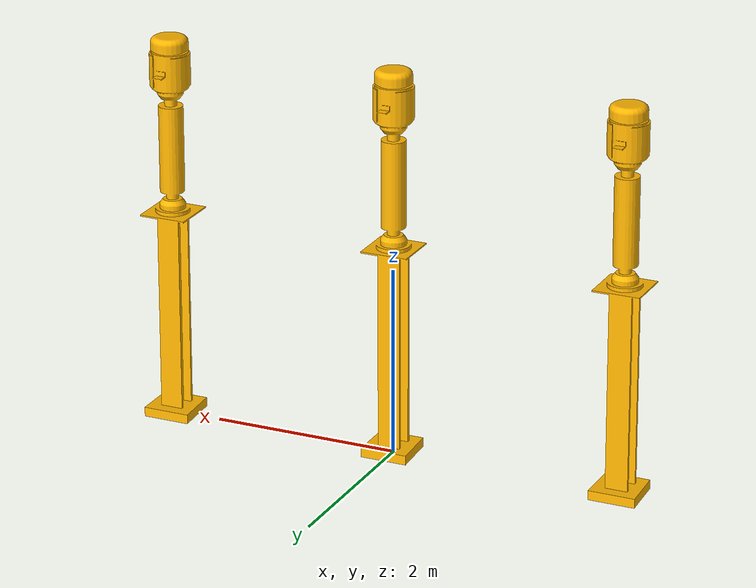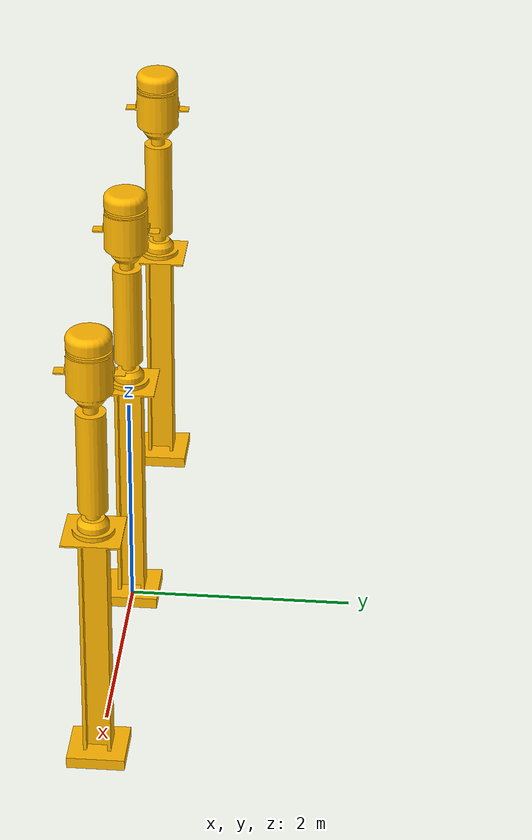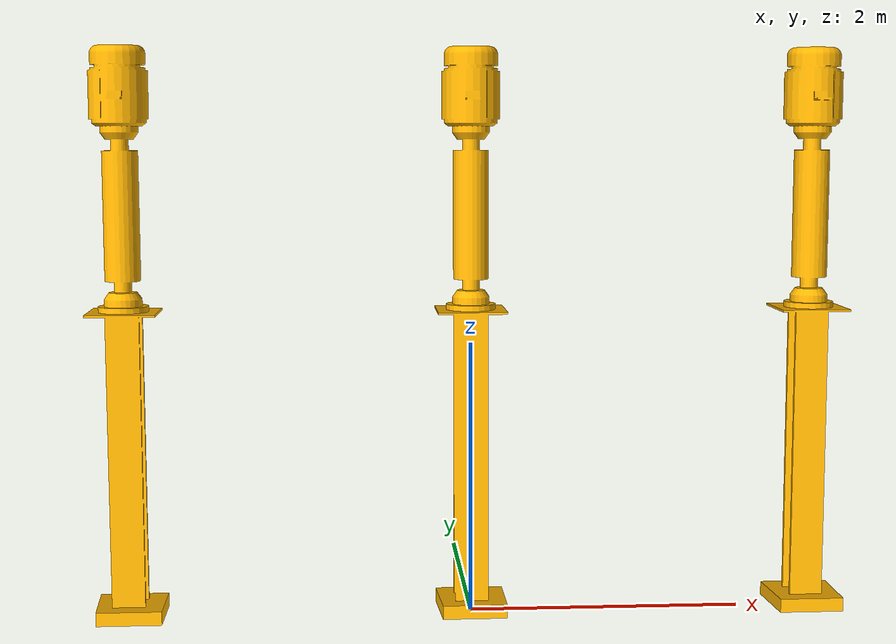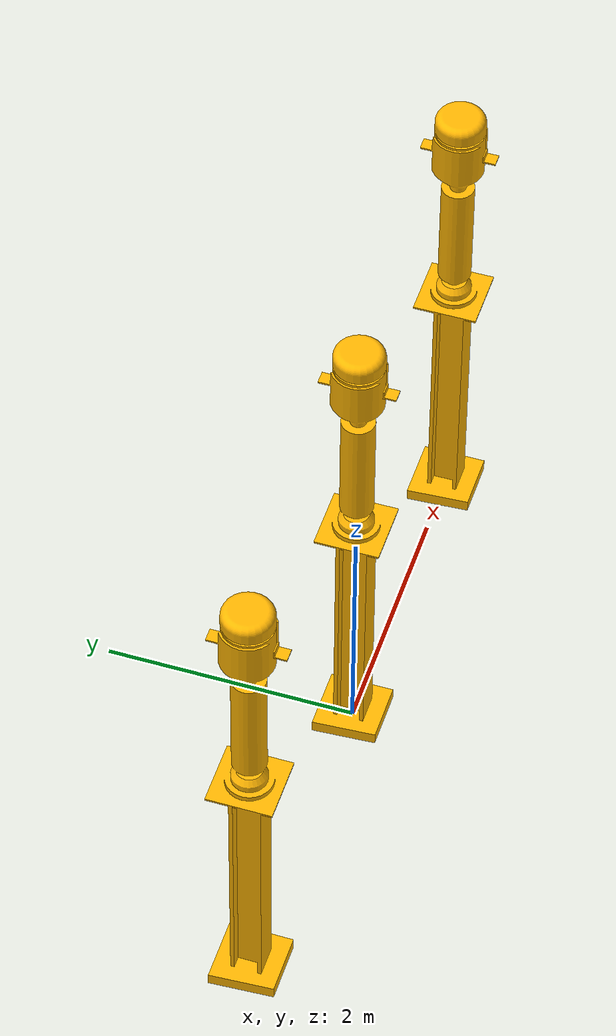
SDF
<?xml version="1.0" ?>
<sdf version="1.8">
  <model name="Electrical_Array_3">
    <static>true</static>
    <link name="link">
      <collision name="collision">
        <geometry>
          <mesh>
            <uri>model://Electrical_Array_3/Meshes/Electrical_Array_3.stl</uri>
            <scale>0.001 0.001 0.001</scale>
          </mesh>
        </geometry>
      </collision>

      <visual name="visual">
        <geometry>
          <mesh>
            <uri>model://Electrical_Array_3/Meshes/Electrical_Array_3.stl</uri>
            <scale>0.001 0.001 0.001</scale>
          </mesh>
        </geometry>
        <material>
          <diffuse>1.0 0.71 0.0 1.0</diffuse>
        </material>
      </visual>
    </link>
  </model>
</sdf>
